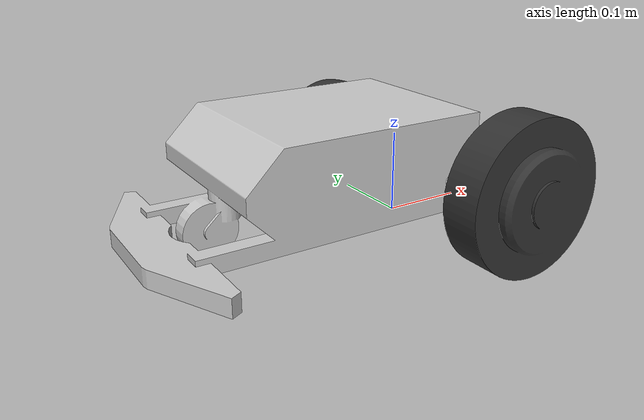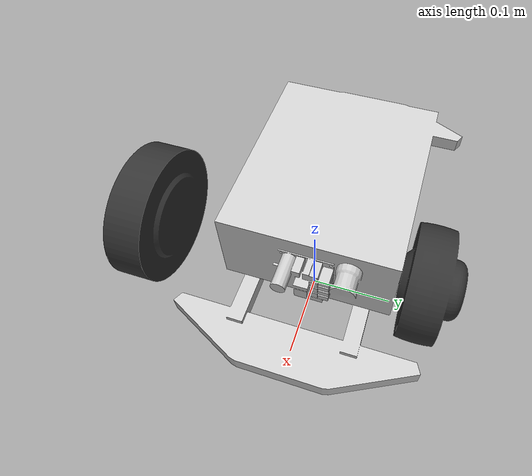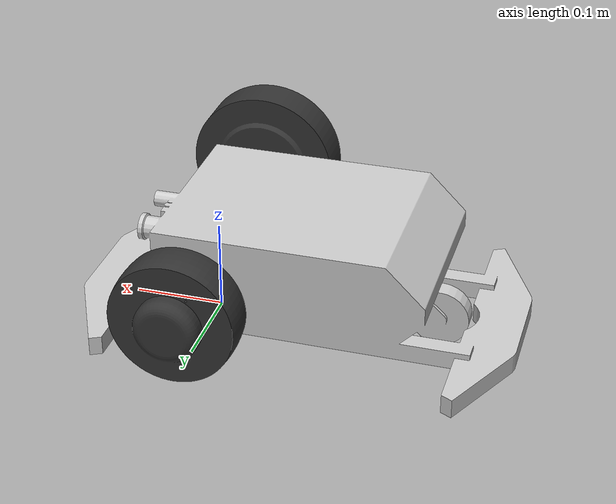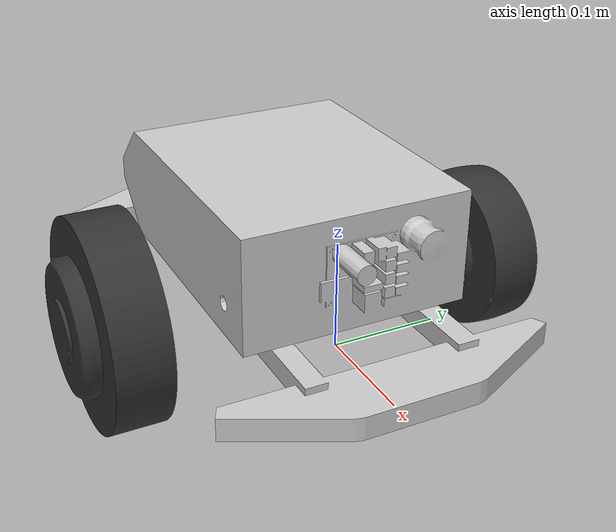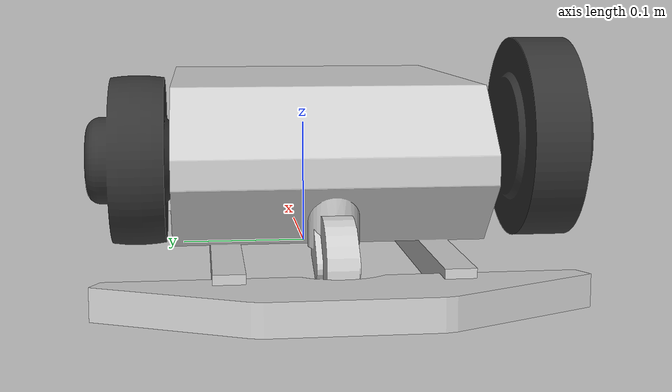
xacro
<?xml version="1.0" ?>
<robot name="mega3" xmlns:xacro="http://www.ros.org/wiki/xacro">

<xacro:include filename="$(find mega3_description)/urdf/materials.xacro" />
<xacro:include filename="$(find mega3_description)/urdf/mega3.gazebo" />

<link name="base_footprint" />

<joint name="base_joint" type="fixed">
  <parent link="base_footprint"/>
  <child link="base_link" />
  <origin xyz="-0.1 0 0" rpy="0 0 -1.5708"/>
</joint>

<link name="base_link">
  <inertial>
    <origin xyz="-0.0001512201285105937 -3.420007213019073e-05 0.08388833658828038" rpy="0 0 0"/>
    <mass value="11.744482"/>
    <inertia ixx="0.091465" iyy="0.06435" izz="0.1253"
             ixy="0.001018" iyz="-0.002369"
             ixz="0.000233"/>
  </inertial>
  <visual>
    <origin xyz="0 0 0" rpy="0 0 0"/>
    <geometry>
      <mesh filename="package://mega3_description/meshes/base_link.stl" scale="0.001 0.001 0.001"/>
    </geometry>
    <material name="silver"/>
  </visual>
  <collision>
    <origin xyz="0 0 0" rpy="0 0 0"/>
    <geometry>
      <mesh filename="package://mega3_description/meshes/base_link.stl" scale="0.001 0.001 0.001"/>
    </geometry>
  </collision>
</link>

<link name="left_wheel_1">
  <inertial>
    <origin xyz="0.0 0.0 0.00213" rpy="0 1.5708 0"/>
    <mass value="1.239934"/>
    <inertia ixx="0.002474" iyy="0.00174" izz="0.00174"
             ixy="0.000" iyz="0.000"
             ixz="-0.000"/>
  </inertial>
  <visual>
    <origin xyz="-0.07 -0.1 -0.136" rpy="0 1.5708 0"/>
    <geometry>
      <mesh filename="package://mega3_description/meshes/left_wheel_1.stl" scale="0.001 0.001 0.001"/>
    </geometry>
    <material name="dark_grey"/>
  </visual>
  <collision>
    <origin xyz="-0.07 -0.1 -0.136" rpy="0 1.5708 0"/>
    <geometry>
      <mesh filename="package://mega3_description/meshes/left_wheel_1.stl" scale="0.001 0.001 0.001"/>
    </geometry>
  </collision>
</link>

<link name="right_wheel_1">
  <inertial>
    <origin xyz="0 0 -0.00213" rpy="0 1.5708 0"/>
    <mass value="1.239934"/>
    <inertia ixx="0.002474" iyy="0.00174" izz="0.00174"
             ixy="-0.000" iyz="-0.000"
             ixz="-0.000"/>
  </inertial>
  <visual>
    <origin xyz="-0.07 -0.1 0.136" rpy="0 1.5708 0"/>
    <geometry>
      <mesh filename="package://mega3_description/meshes/right_wheel_1.stl" scale="0.001 0.001 0.001"/>
    </geometry>
    <material name="dark_grey"/>
  </visual>
  <collision>
    <origin xyz="-0.07 -0.1 0.136" rpy="0 1.5708 0"/>
    <geometry>
      <mesh filename="package://mega3_description/meshes/right_wheel_1.stl" scale="0.001 0.001 0.001"/>
    </geometry>
  </collision>
</link>

<joint name="left_wheel_joint" type="continuous">
  <origin xyz="-0.136 0.1 0.07" rpy="0 -1.5708 0"/>
  <parent link="base_link"/>
  <child link="left_wheel_1"/>
  <axis xyz="0.0 0.0 1.0"/>
</joint>

<joint name="right_wheel_joint" type="continuous">
  <origin xyz="0.136 0.1 0.07" rpy="0 -1.5708 0"/>
  <parent link="base_link"/>
  <child link="right_wheel_1"/>
  <axis xyz="0.0 0.0 1.0"/>
</joint>

</robot>

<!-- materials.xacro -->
<robot name="mega3" xmlns:xacro="http://www.ros.org/wiki/xacro" >

<material name="silver">
  <color rgba="0.800 0.800 0.800 1.000"/>
</material>

<material name="dark_grey">
  <color rgba="0.200 0.200 0.200 1.000"/>
</material>

</robot>

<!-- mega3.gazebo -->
<robot name="mega3" xmlns:xacro="http://www.ros.org/wiki/xacro" >

<xacro:property name="body_color" value="Gazebo/Silver" />
<xacro:property name="wheel_color" value="Gazebo/DarkGrey" />

<gazebo>
  <plugin name="megarover3_controller" filename="libgazebo_ros_diff_drive.so">
    <commandTopic>cmd_vel</commandTopic>
    <odometryTopic>odom</odometryTopic>
    <odometryFrame>odom</odometryFrame>
    <odometrySource>world</odometrySource>
    <publishOdomTF>true</publishOdomTF>
    <robotBaseFrame>base_footprint</robotBaseFrame>
    <publishWheelTF>false</publishWheelTF>
    <publishTf>true</publishTf>
    <publishWheelJointState>true</publishWheelJointState>
    <legacyMode>false</legacyMode>
    <updateRate>30</updateRate>
    <leftJoint>left_wheel_joint</leftJoint>
    <rightJoint>right_wheel_joint</rightJoint>
    <wheelSeparation>0.272</wheelSeparation>
    <wheelDiameter>0.140</wheelDiameter>
    <wheelAcceleration>1.0</wheelAcceleration>
    <wheelTorque>20</wheelTorque>
    <rosDebugLevel>na</rosDebugLevel>
  </plugin>
</gazebo>

<gazebo reference="base_link">
  <material>${body_color}</material>
  <mu1>0.2</mu1>
  <mu2>0.2</mu2>
  <selfCollide>true</selfCollide>
  <gravity>true</gravity>
</gazebo>

<gazebo reference="left_wheel_1">
  <material>${wheel_color}</material>
  <mu1>10000</mu1>
  <mu2>10000</mu2>
  <selfCollide>true</selfCollide>
  <gravity>true</gravity>
</gazebo>

<gazebo reference="right_wheel_1">
  <material>${wheel_color}</material>
  <mu1>10000</mu1>
  <mu2>10000</mu2>
  <selfCollide>true</selfCollide>
  <gravity>true</gravity>
</gazebo>

</robot>
